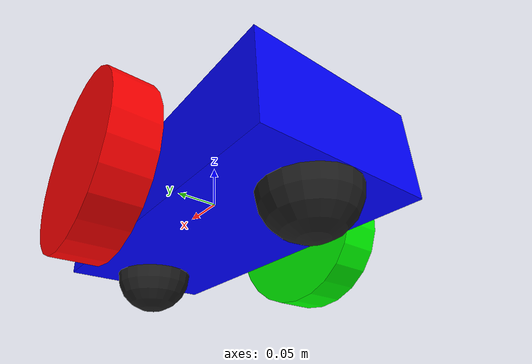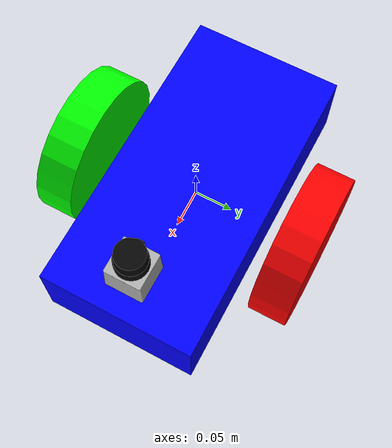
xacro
<?xml version="1.0"?>
<robot name="myrobot" xmlns:xacro="http://www.ros.org/wiki/xacro">

  <!-- Include the Gazebo configuration -->
  <xacro:include filename="$(find lab_4)/urdf/my_robot.gazebo"/>

  <!-- Dummy link to resolve root link inertia warning -->
  <link name="dummy_link">
    <inertial>
      <mass value="0.0001" />
      <origin xyz="0 0 0" />
      <inertia ixx="0.0001" ixy="0" ixz="0" iyy="0.0001" iyz="0" izz="0.0001" />
    </inertial>
  </link>

  <joint name="base_joint" type="fixed">
    <parent link="dummy_link" />
    <child link="chassis" />
  </joint>

  <!-- Chassis link -->
  <link name="chassis">
    <inertial>
      <mass value="5.0" />
      <origin xyz="0.0 0 0.1" rpy="0 0 0" />
      <inertia ixx="0.1" ixy="0" ixz="0" iyy="0.1" iyz="0" izz="0.1" />
    </inertial>
    <collision name="collision">
      <geometry>
        <box size=".4 .2 .1" />
      </geometry>
    </collision>
    <visual name="chassis_visual">
      <origin xyz="0 0 0" rpy="0 0 0" />
      <geometry>
        <box size=".4 .2 .1" />
      </geometry>
      <material name="blue">
        <color rgba="0.0 0.0 1 1.0" />
      </material>
    </visual>
    <collision name="caster_collision">
      <origin xyz="-0.15 0 -0.05" rpy="0 0 0" />
      <geometry>
        <sphere radius="0.05" />
      </geometry>
    </collision>
    <visual name="caster_visual">
      <origin xyz="-0.15 0 -0.05" rpy="0 0 0" />
      <geometry>
        <sphere radius="0.05" />
      </geometry>
    </visual>
    <collision name="caster_front_collision">
      <origin xyz="0.15 0 -0.05" rpy="0 0 0" />
      <geometry>
        <sphere radius="0.05" />
      </geometry>
    </collision>
    <visual name="caster_front_visual">
      <origin xyz="0.15 0 -0.05" rpy="0 0 0" />
      <geometry>
        <sphere radius="0.05" />
      </geometry>
    </visual>
  </link>

  <!-- Left wheel link -->
  <link name="left_wheel">
    <collision name="collision">
      <origin xyz="0 0 0" rpy="0 1.5707 1.5707" />
      <geometry>
        <cylinder radius="0.1" length="0.05" />
      </geometry>
    </collision>
    <visual name="left_wheel_visual">
      <origin xyz="0 0 0" rpy="0 1.5707 1.5707" />
      <geometry>
        <cylinder radius="0.1" length="0.05" />
      </geometry>
      <material name="red">
        <color rgba="1 0.0 0.0 1.0" />
      </material>
    </visual>
    <inertial>
      <origin xyz="0 0 0" rpy="0 1.5707 1.5707" />
      <mass value="5" />
      <inertia ixx="0.1" ixy="0.0" ixz="0.0" iyy="0.1" iyz="0.0" izz="0.1" />
    </inertial>
  </link>

  <!-- Right wheel link -->
  <link name="right_wheel">
    <collision name="collision">
      <origin xyz="0 0 0" rpy="0 1.5707 1.5707" />
      <geometry>
        <cylinder radius="0.1" length="0.05" />
      </geometry>
    </collision>
    <visual name="right_wheel_visual">
      <origin xyz="0 0 0" rpy="0 1.5707 1.5707" />
      <geometry>
        <cylinder radius="0.1" length="0.05" />
      </geometry>
      <material name="green">
        <color rgba="0.0 1 0.0 1.0" />
      </material>
    </visual>
    <inertial>
      <origin xyz="0 0 0" rpy="0 1.5707 1.5707" />
      <mass value="5" />
      <inertia ixx="0.1" ixy="0.0" ixz="0.0" iyy="0.1" iyz="0.0" izz="0.1" />
    </inertial>
  </link>

  <!-- Joints connecting wheels to chassis -->
  <joint type="continuous" name="left_wheel_hinge">
    <origin xyz="0 0.15 0" rpy="0 0 0" />
    <parent link="chassis" />
    <child link="left_wheel" />
    <axis xyz="0 1 0" />
  </joint>

  <joint type="continuous" name="right_wheel_hinge">
    <origin xyz="0 -0.15 0" rpy="0 0 0" />
    <parent link="chassis" />
    <child link="right_wheel" />
    <axis xyz="0 1 0" />
  </joint>

  <!-- Hokuyo Laser -->
  <link name="hokuyo_link">
    <collision>
      <origin xyz="0 0 0" rpy="0 0 0" />
      <geometry>
        <box size="0.1 0.1 0.1" />
      </geometry>
    </collision>
    <visual>
      <origin xyz="0 0 0" rpy="0 0 0" />
      <geometry>
        <mesh filename="package://lab_4/meshes/hokuyo.dae" />
      </geometry>
    </visual>
    <inertial>
      <mass value="1e-5" />
      <origin xyz="0 0 0" rpy="0 0 0" />
      <inertia ixx="1e-6" ixy="0" ixz="0" iyy="1e-6" iyz="0" izz="1e-6" />
    </inertial>
  </link>

  <joint name="hokuyo_joint" type="fixed">
    <axis xyz="0 1 0" />
    <origin xyz="0.15 0 0.1" rpy="0 0 0" />
    <parent link="chassis" />
    <child link="hokuyo_link" />
  </joint>

</robot>
